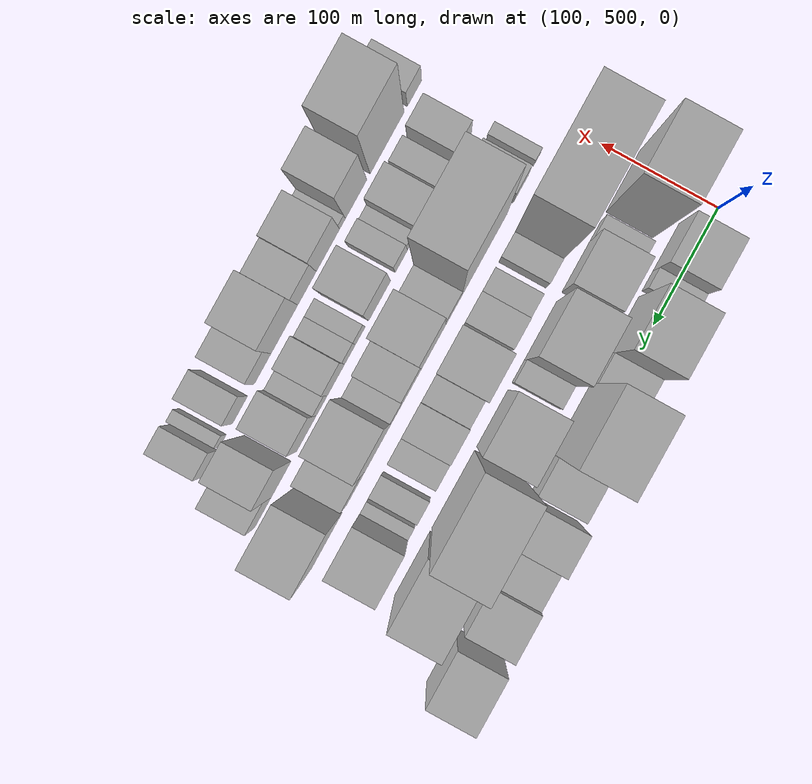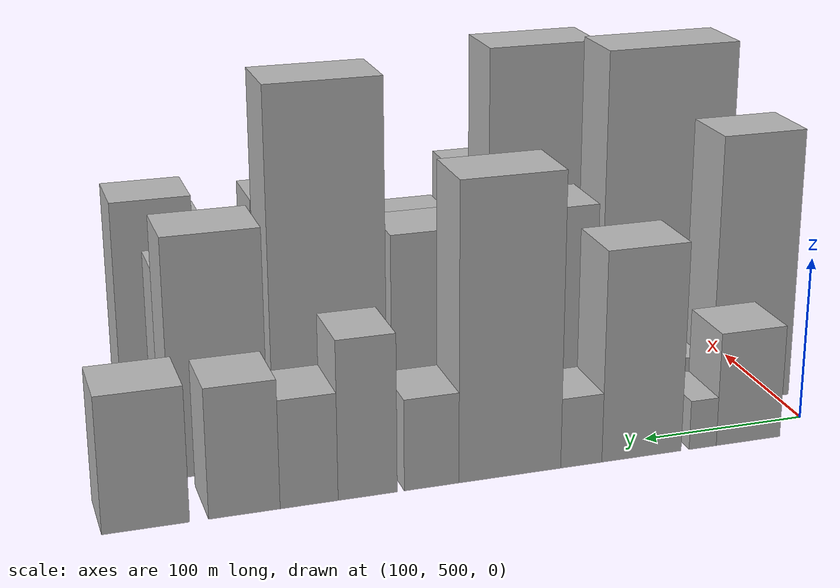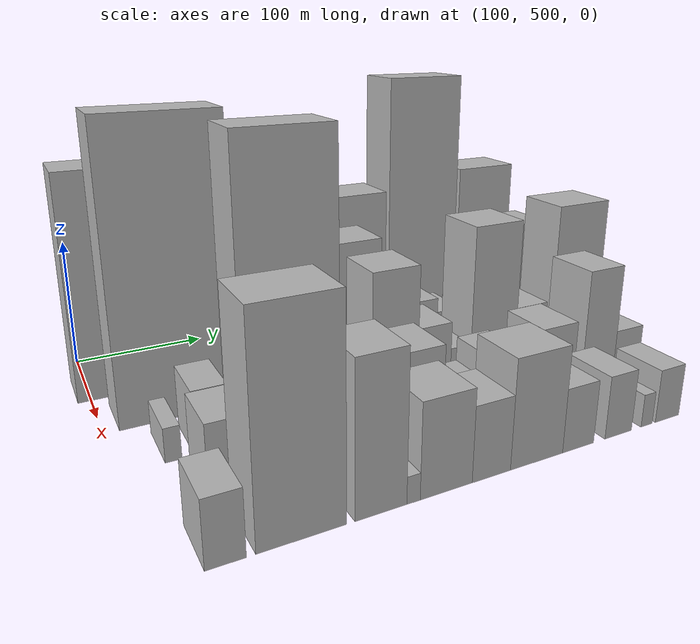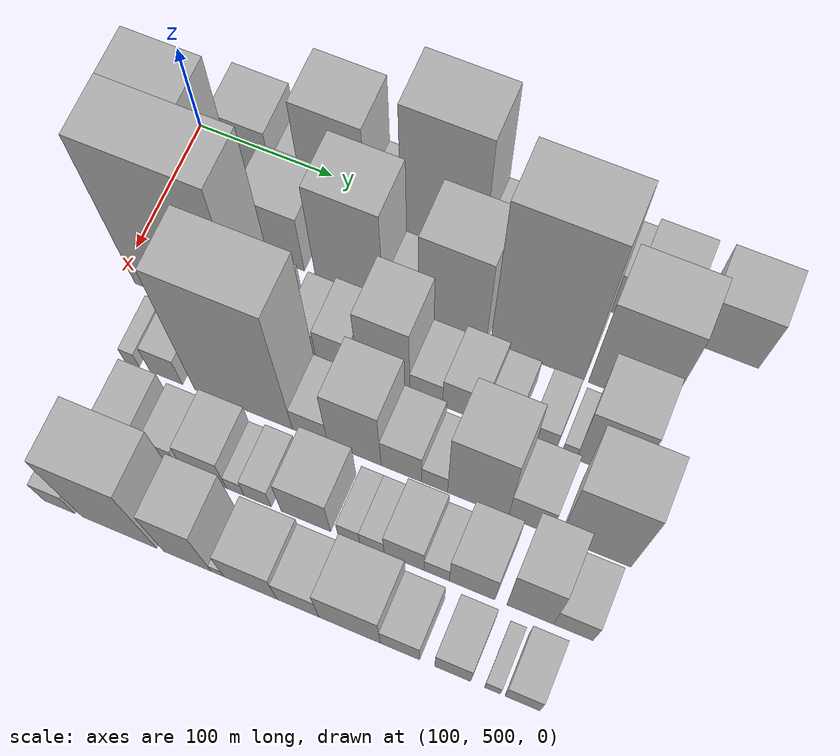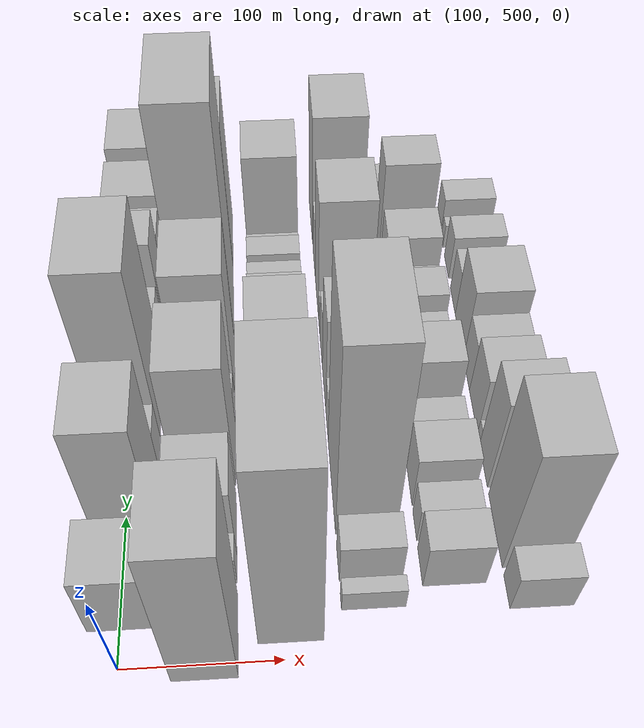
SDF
<sdf version="1.6">
 <world name="default">
  <model name="building_42">
   <static>1</static>
   <pose>100.0000 544.4914 0 0.000000 0.000000 0.000000</pose>
   <link name="link">
    <pose>0 0 34.50 0 0 0</pose>
    <collision name="collision"><geometry><box><size>40.0000 40.5359 69.0000</size></box></geometry></collision>
    <visual name="visual">
     <cast_shadows>0</cast_shadows>
     <geometry><box><size>40.0000 40.5359 69.0000</size></box></geometry>
     <material>
      <script>
       <uri>model://HANNAS_wall/materials/scripts</uri>
       <uri>model://HANNAS_wall/materials/textures</uri>
       <name>vrc/HANNAS_wall</name>
      </script>
     </material>
    </visual>
   </link>
  </model>
  <model name="building_43">
   <static>1</static>
   <pose>100.0000 573.2885 0 0.000000 0.000000 0.000000</pose>
   <link name="link">
    <pose>0 0 15.00 0 0 0</pose>
    <collision name="collision"><geometry><box><size>40.0000 17.0583 30.0000</size></box></geometry></collision>
    <visual name="visual">
     <cast_shadows>0</cast_shadows>
     <geometry><box><size>40.0000 17.0583 30.0000</size></box></geometry>
     <material>
      <script>
       <uri>model://HANNAS_wall/materials/scripts</uri>
       <uri>model://HANNAS_wall/materials/textures</uri>
       <name>vrc/HANNAS_wall</name>
      </script>
     </material>
    </visual>
   </link>
  </model>
  <model name="building_44">
   <static>1</static>
   <pose>100.0000 611.1924 0 0.000000 0.000000 0.000000</pose>
   <link name="link">
    <pose>0 0 63.00 0 0 0</pose>
    <collision name="collision"><geometry><box><size>40.0000 48.7495 126.0000</size></box></geometry></collision>
    <visual name="visual">
     <cast_shadows>0</cast_shadows>
     <geometry><box><size>40.0000 48.7495 126.0000</size></box></geometry>
     <material>
      <script>
       <uri>model://HANNAS_wall/materials/scripts</uri>
       <uri>model://HANNAS_wall/materials/textures</uri>
       <name>vrc/HANNAS_wall</name>
      </script>
     </material>
    </visual>
   </link>
  </model>
  <model name="building_45">
   <static>1</static>
   <pose>100.0000 647.9582 0 0.000000 0.000000 0.000000</pose>
   <link name="link">
    <pose>0 0 21.00 0 0 0</pose>
    <collision name="collision"><geometry><box><size>40.0000 24.7822 42.0000</size></box></geometry></collision>
    <visual name="visual">
     <cast_shadows>0</cast_shadows>
     <geometry><box><size>40.0000 24.7822 42.0000</size></box></geometry>
     <material>
      <script>
       <uri>model://HANNAS_wall/materials/scripts</uri>
       <uri>model://HANNAS_wall/materials/textures</uri>
       <name>vrc/HANNAS_wall</name>
      </script>
     </material>
    </visual>
   </link>
  </model>
  <model name="building_46">
   <static>1</static>
   <pose>100.0000 690.2803 0 0.000000 0.000000 0.000000</pose>
   <link name="link">
    <pose>0 0 87.00 0 0 0</pose>
    <collision name="collision"><geometry><box><size>40.0000 59.8620 174.0000</size></box></geometry></collision>
    <visual name="visual">
     <cast_shadows>0</cast_shadows>
     <geometry><box><size>40.0000 59.8620 174.0000</size></box></geometry>
     <material>
      <script>
       <uri>model://HANNAS_wall/materials/scripts</uri>
       <uri>model://HANNAS_wall/materials/textures</uri>
       <name>vrc/HANNAS_wall</name>
      </script>
     </material>
    </visual>
   </link>
  </model>
  <model name="building_47">
   <static>1</static>
   <pose>100.0000 735.8342 0 0.000000 0.000000 0.000000</pose>
   <link name="link">
    <pose>0 0 27.00 0 0 0</pose>
    <collision name="collision"><geometry><box><size>40.0000 31.2457 54.0000</size></box></geometry></collision>
    <visual name="visual">
     <cast_shadows>0</cast_shadows>
     <geometry><box><size>40.0000 31.2457 54.0000</size></box></geometry>
     <material>
      <script>
       <uri>model://HANNAS_wall/materials/scripts</uri>
       <uri>model://HANNAS_wall/materials/textures</uri>
       <name>vrc/HANNAS_wall</name>
      </script>
     </material>
    </visual>
   </link>
  </model>
  <model name="building_48">
   <static>1</static>
   <pose>100.0000 772.0168 0 0.000000 0.000000 0.000000</pose>
   <link name="link">
    <pose>0 0 46.50 0 0 0</pose>
    <collision name="collision"><geometry><box><size>40.0000 33.1195 93.0000</size></box></geometry></collision>
    <visual name="visual">
     <cast_shadows>0</cast_shadows>
     <geometry><box><size>40.0000 33.1195 93.0000</size></box></geometry>
     <material>
      <script>
       <uri>model://HANNAS_wall/materials/scripts</uri>
       <uri>model://HANNAS_wall/materials/textures</uri>
       <name>vrc/HANNAS_wall</name>
      </script>
     </material>
    </visual>
   </link>
  </model>
  <model name="building_49">
   <static>1</static>
   <pose>100.0000 804.5187 0 0.000000 0.000000 0.000000</pose>
   <link name="link">
    <pose>0 0 31.50 0 0 0</pose>
    <collision name="collision"><geometry><box><size>40.0000 31.8842 63.0000</size></box></geometry></collision>
    <visual name="visual">
     <cast_shadows>0</cast_shadows>
     <geometry><box><size>40.0000 31.8842 63.0000</size></box></geometry>
     <material>
      <script>
       <uri>model://HANNAS_wall/materials/scripts</uri>
       <uri>model://HANNAS_wall/materials/textures</uri>
       <name>vrc/HANNAS_wall</name>
      </script>
     </material>
    </visual>
   </link>
  </model>
  <model name="building_50">
   <static>1</static>
   <pose>100.0000 839.7334 0 0.000000 0.000000 0.000000</pose>
   <link name="link">
    <pose>0 0 37.50 0 0 0</pose>
    <collision name="collision"><geometry><box><size>40.0000 38.5453 75.0000</size></box></geometry></collision>
    <visual name="visual">
     <cast_shadows>0</cast_shadows>
     <geometry><box><size>40.0000 38.5453 75.0000</size></box></geometry>
     <material>
      <script>
       <uri>model://HANNAS_wall/materials/scripts</uri>
       <uri>model://HANNAS_wall/materials/textures</uri>
       <name>vrc/HANNAS_wall</name>
      </script>
     </material>
    </visual>
   </link>
  </model>
  <model name="building_51">
   <static>1</static>
   <pose>100.0000 892.0236 0 0.000000 0.000000 0.000000</pose>
   <link name="link">
    <pose>0 0 39.00 0 0 0</pose>
    <collision name="collision"><geometry><box><size>40.0000 46.0351 78.0000</size></box></geometry></collision>
    <visual name="visual">
     <cast_shadows>0</cast_shadows>
     <geometry><box><size>40.0000 46.0351 78.0000</size></box></geometry>
     <material>
      <script>
       <uri>model://HANNAS_wall/materials/scripts</uri>
       <uri>model://HANNAS_wall/materials/textures</uri>
       <name>vrc/HANNAS_wall</name>
      </script>
     </material>
    </visual>
   </link>
  </model>
  <model name="building_88">
   <static>1</static>
   <pose>152.0000 517.1321 0 0.000000 0.000000 0.000000</pose>
   <link name="link">
    <pose>0 0 84.00 0 0 0</pose>
    <collision name="collision"><geometry><box><size>40.0000 52.2592 168.0000</size></box></geometry></collision>
    <visual name="visual">
     <cast_shadows>0</cast_shadows>
     <geometry><box><size>40.0000 52.2592 168.0000</size></box></geometry>
     <material>
      <script>
       <uri>model://HANNAS_wall/materials/scripts</uri>
       <uri>model://HANNAS_wall/materials/textures</uri>
       <name>vrc/HANNAS_wall</name>
      </script>
     </material>
    </visual>
   </link>
  </model>
  <model name="building_89">
   <static>1</static>
   <pose>152.0000 559.5845 0 0.000000 0.000000 0.000000</pose>
   <link name="link">
    <pose>0 0 16.50 0 0 0</pose>
    <collision name="collision"><geometry><box><size>40.0000 18.6455 33.0000</size></box></geometry></collision>
    <visual name="visual">
     <cast_shadows>0</cast_shadows>
     <geometry><box><size>40.0000 18.6455 33.0000</size></box></geometry>
     <material>
      <script>
       <uri>model://HANNAS_wall/materials/scripts</uri>
       <uri>model://HANNAS_wall/materials/textures</uri>
       <name>vrc/HANNAS_wall</name>
      </script>
     </material>
    </visual>
   </link>
  </model>
  <model name="building_90">
   <static>1</static>
   <pose>152.0000 590.2712 0 0.000000 0.000000 0.000000</pose>
   <link name="link">
    <pose>0 0 40.50 0 0 0</pose>
    <collision name="collision"><geometry><box><size>40.0000 42.7281 81.0000</size></box></geometry></collision>
    <visual name="visual">
     <cast_shadows>0</cast_shadows>
     <geometry><box><size>40.0000 42.7281 81.0000</size></box></geometry>
     <material>
      <script>
       <uri>model://HANNAS_wall/materials/scripts</uri>
       <uri>model://HANNAS_wall/materials/textures</uri>
       <name>vrc/HANNAS_wall</name>
      </script>
     </material>
    </visual>
   </link>
  </model>
  <model name="building_91">
   <static>1</static>
   <pose>152.0000 644.6111 0 0.000000 0.000000 0.000000</pose>
   <link name="link">
    <pose>0 0 67.50 0 0 0</pose>
    <collision name="collision"><geometry><box><size>40.0000 49.9517 135.0000</size></box></geometry></collision>
    <visual name="visual">
     <cast_shadows>0</cast_shadows>
     <geometry><box><size>40.0000 49.9517 135.0000</size></box></geometry>
     <material>
      <script>
       <uri>model://HANNAS_wall/materials/scripts</uri>
       <uri>model://HANNAS_wall/materials/textures</uri>
       <name>vrc/HANNAS_wall</name>
      </script>
     </material>
    </visual>
   </link>
  </model>
  <model name="building_92">
   <static>1</static>
   <pose>152.0000 679.1760 0 0.000000 0.000000 0.000000</pose>
   <link name="link">
    <pose>0 0 16.50 0 0 0</pose>
    <collision name="collision"><geometry><box><size>40.0000 19.1781 33.0000</size></box></geometry></collision>
    <visual name="visual">
     <cast_shadows>0</cast_shadows>
     <geometry><box><size>40.0000 19.1781 33.0000</size></box></geometry>
     <material>
      <script>
       <uri>model://HANNAS_wall/materials/scripts</uri>
       <uri>model://HANNAS_wall/materials/textures</uri>
       <name>vrc/HANNAS_wall</name>
      </script>
     </material>
    </visual>
   </link>
  </model>
  <model name="building_93">
   <static>1</static>
   <pose>152.0000 718.9890 0 0.000000 0.000000 0.000000</pose>
   <link name="link">
    <pose>0 0 64.50 0 0 0</pose>
    <collision name="collision"><geometry><box><size>40.0000 48.4477 129.0000</size></box></geometry></collision>
    <visual name="visual">
     <cast_shadows>0</cast_shadows>
     <geometry><box><size>40.0000 48.4477 129.0000</size></box></geometry>
     <material>
      <script>
       <uri>model://HANNAS_wall/materials/scripts</uri>
       <uri>model://HANNAS_wall/materials/textures</uri>
       <name>vrc/HANNAS_wall</name>
      </script>
     </material>
    </visual>
   </link>
  </model>
  <model name="building_94">
   <static>1</static>
   <pose>152.0000 779.1926 0 0.000000 0.000000 0.000000</pose>
   <link name="link">
    <pose>0 0 109.50 0 0 0</pose>
    <collision name="collision"><geometry><box><size>40.0000 65.9595 219.0000</size></box></geometry></collision>
    <visual name="visual">
     <cast_shadows>0</cast_shadows>
     <geometry><box><size>40.0000 65.9595 219.0000</size></box></geometry>
     <material>
      <script>
       <uri>model://HANNAS_wall/materials/scripts</uri>
       <uri>model://HANNAS_wall/materials/textures</uri>
       <name>vrc/HANNAS_wall</name>
      </script>
     </material>
    </visual>
   </link>
  </model>
  <model name="building_95">
   <static>1</static>
   <pose>152.0000 842.4534 0 0.000000 0.000000 0.000000</pose>
   <link name="link">
    <pose>0 0 70.50 0 0 0</pose>
    <collision name="collision"><geometry><box><size>40.0000 54.5622 141.0000</size></box></geometry></collision>
    <visual name="visual">
     <cast_shadows>0</cast_shadows>
     <geometry><box><size>40.0000 54.5622 141.0000</size></box></geometry>
     <material>
      <script>
       <uri>model://HANNAS_wall/materials/scripts</uri>
       <uri>model://HANNAS_wall/materials/textures</uri>
       <name>vrc/HANNAS_wall</name>
      </script>
     </material>
    </visual>
   </link>
  </model>
  <model name="building_139">
   <static>1</static>
   <pose>204.0000 552.3379 0 0.000000 0.000000 0.000000</pose>
   <link name="link">
    <pose>0 0 105.00 0 0 0</pose>
    <collision name="collision"><geometry><box><size>40.0000 83.4560 210.0000</size></box></geometry></collision>
    <visual name="visual">
     <cast_shadows>0</cast_shadows>
     <geometry><box><size>40.0000 83.4560 210.0000</size></box></geometry>
     <material>
      <script>
       <uri>model://HANNAS_wall/materials/scripts</uri>
       <uri>model://HANNAS_wall/materials/textures</uri>
       <name>vrc/HANNAS_wall</name>
      </script>
     </material>
    </visual>
   </link>
  </model>
  <model name="building_140">
   <static>1</static>
   <pose>204.0000 604.3417 0 0.000000 0.000000 0.000000</pose>
   <link name="link">
    <pose>0 0 19.50 0 0 0</pose>
    <collision name="collision"><geometry><box><size>40.0000 20.5516 39.0000</size></box></geometry></collision>
    <visual name="visual">
     <cast_shadows>0</cast_shadows>
     <geometry><box><size>40.0000 20.5516 39.0000</size></box></geometry>
     <material>
      <script>
       <uri>model://HANNAS_wall/materials/scripts</uri>
       <uri>model://HANNAS_wall/materials/textures</uri>
       <name>vrc/HANNAS_wall</name>
      </script>
     </material>
    </visual>
   </link>
  </model>
  <model name="building_141">
   <static>1</static>
   <pose>204.0000 632.7644 0 0.000000 0.000000 0.000000</pose>
   <link name="link">
    <pose>0 0 18.00 0 0 0</pose>
    <collision name="collision"><geometry><box><size>40.0000 20.2938 36.0000</size></box></geometry></collision>
    <visual name="visual">
     <cast_shadows>0</cast_shadows>
     <geometry><box><size>40.0000 20.2938 36.0000</size></box></geometry>
     <material>
      <script>
       <uri>model://HANNAS_wall/materials/scripts</uri>
       <uri>model://HANNAS_wall/materials/textures</uri>
       <name>vrc/HANNAS_wall</name>
      </script>
     </material>
    </visual>
   </link>
  </model>
  <model name="building_142">
   <static>1</static>
   <pose>204.0000 655.7112 0 0.000000 0.000000 0.000000</pose>
   <link name="link">
    <pose>0 0 22.50 0 0 0</pose>
    <collision name="collision"><geometry><box><size>40.0000 25.5998 45.0000</size></box></geometry></collision>
    <visual name="visual">
     <cast_shadows>0</cast_shadows>
     <geometry><box><size>40.0000 25.5998 45.0000</size></box></geometry>
     <material>
      <script>
       <uri>model://HANNAS_wall/materials/scripts</uri>
       <uri>model://HANNAS_wall/materials/textures</uri>
       <name>vrc/HANNAS_wall</name>
      </script>
     </material>
    </visual>
   </link>
  </model>
  <model name="building_143">
   <static>1</static>
   <pose>204.0000 691.9859 0 0.000000 0.000000 0.000000</pose>
   <link name="link">
    <pose>0 0 54.00 0 0 0</pose>
    <collision name="collision"><geometry><box><size>40.0000 36.9496 108.0000</size></box></geometry></collision>
    <visual name="visual">
     <cast_shadows>0</cast_shadows>
     <geometry><box><size>40.0000 36.9496 108.0000</size></box></geometry>
     <material>
      <script>
       <uri>model://HANNAS_wall/materials/scripts</uri>
       <uri>model://HANNAS_wall/materials/textures</uri>
       <name>vrc/HANNAS_wall</name>
      </script>
     </material>
    </visual>
   </link>
  </model>
  <model name="building_144">
   <static>1</static>
   <pose>204.0000 721.9324 0 0.000000 0.000000 0.000000</pose>
   <link name="link">
    <pose>0 0 19.50 0 0 0</pose>
    <collision name="collision"><geometry><box><size>40.0000 22.9434 39.0000</size></box></geometry></collision>
    <visual name="visual">
     <cast_shadows>0</cast_shadows>
     <geometry><box><size>40.0000 22.9434 39.0000</size></box></geometry>
     <material>
      <script>
       <uri>model://HANNAS_wall/materials/scripts</uri>
       <uri>model://HANNAS_wall/materials/textures</uri>
       <name>vrc/HANNAS_wall</name>
      </script>
     </material>
    </visual>
   </link>
  </model>
  <model name="building_145">
   <static>1</static>
   <pose>204.0000 747.8635 0 0.000000 0.000000 0.000000</pose>
   <link name="link">
    <pose>0 0 25.50 0 0 0</pose>
    <collision name="collision"><geometry><box><size>40.0000 28.9188 51.0000</size></box></geometry></collision>
    <visual name="visual">
     <cast_shadows>0</cast_shadows>
     <geometry><box><size>40.0000 28.9188 51.0000</size></box></geometry>
     <material>
      <script>
       <uri>model://HANNAS_wall/materials/scripts</uri>
       <uri>model://HANNAS_wall/materials/textures</uri>
       <name>vrc/HANNAS_wall</name>
      </script>
     </material>
    </visual>
   </link>
  </model>
  <model name="building_146">
   <static>1</static>
   <pose>204.0000 773.2035 0 0.000000 0.000000 0.000000</pose>
   <link name="link">
    <pose>0 0 19.50 0 0 0</pose>
    <collision name="collision"><geometry><box><size>40.0000 21.7611 39.0000</size></box></geometry></collision>
    <visual name="visual">
     <cast_shadows>0</cast_shadows>
     <geometry><box><size>40.0000 21.7611 39.0000</size></box></geometry>
     <material>
      <script>
       <uri>model://HANNAS_wall/materials/scripts</uri>
       <uri>model://HANNAS_wall/materials/textures</uri>
       <name>vrc/HANNAS_wall</name>
      </script>
     </material>
    </visual>
   </link>
  </model>
  <model name="building_147">
   <static>1</static>
   <pose>204.0000 802.6611 0 0.000000 0.000000 0.000000</pose>
   <link name="link">
    <pose>0 0 18.00 0 0 0</pose>
    <collision name="collision"><geometry><box><size>40.0000 19.1540 36.0000</size></box></geometry></collision>
    <visual name="visual">
     <cast_shadows>0</cast_shadows>
     <geometry><box><size>40.0000 19.1540 36.0000</size></box></geometry>
     <material>
      <script>
       <uri>model://HANNAS_wall/materials/scripts</uri>
       <uri>model://HANNAS_wall/materials/textures</uri>
       <name>vrc/HANNAS_wall</name>
      </script>
     </material>
    </visual>
   </link>
  </model>
  <model name="building_148">
   <static>1</static>
   <pose>204.0000 821.2860 0 0.000000 0.000000 0.000000</pose>
   <link name="link">
    <pose>0 0 12.00 0 0 0</pose>
    <collision name="collision"><geometry><box><size>40.0000 10.0958 24.0000</size></box></geometry></collision>
    <visual name="visual">
     <cast_shadows>0</cast_shadows>
     <geometry><box><size>40.0000 10.0958 24.0000</size></box></geometry>
     <material>
      <script>
       <uri>model://HANNAS_wall/materials/scripts</uri>
       <uri>model://HANNAS_wall/materials/textures</uri>
       <name>vrc/HANNAS_wall</name>
      </script>
     </material>
    </visual>
   </link>
  </model>
  <model name="building_149">
   <static>1</static>
   <pose>204.0000 846.6514 0 0.000000 0.000000 0.000000</pose>
   <link name="link">
    <pose>0 0 51.00 0 0 0</pose>
    <collision name="collision"><geometry><box><size>40.0000 40.6350 102.0000</size></box></geometry></collision>
    <visual name="visual">
     <cast_shadows>0</cast_shadows>
     <geometry><box><size>40.0000 40.6350 102.0000</size></box></geometry>
     <material>
      <script>
       <uri>model://HANNAS_wall/materials/scripts</uri>
       <uri>model://HANNAS_wall/materials/textures</uri>
       <name>vrc/HANNAS_wall</name>
      </script>
     </material>
    </visual>
   </link>
  </model>
  <model name="building_193">
   <static>1</static>
   <pose>256.0000 534.2017 0 0.000000 0.000000 0.000000</pose>
   <link name="link">
    <pose>0 0 12.00 0 0 0</pose>
    <collision name="collision"><geometry><box><size>40.0000 10.6460 24.0000</size></box></geometry></collision>
    <visual name="visual">
     <cast_shadows>0</cast_shadows>
     <geometry><box><size>40.0000 10.6460 24.0000</size></box></geometry>
     <material>
      <script>
       <uri>model://HANNAS_wall/materials/scripts</uri>
       <uri>model://HANNAS_wall/materials/textures</uri>
       <name>vrc/HANNAS_wall</name>
      </script>
     </material>
    </visual>
   </link>
  </model>
  <model name="building_194">
   <static>1</static>
   <pose>256.0000 559.3073 0 0.000000 0.000000 0.000000</pose>
   <link name="link">
    <pose>0 0 22.50 0 0 0</pose>
    <collision name="collision"><geometry><box><size>40.0000 23.5653 45.0000</size></box></geometry></collision>
    <visual name="visual">
     <cast_shadows>0</cast_shadows>
     <geometry><box><size>40.0000 23.5653 45.0000</size></box></geometry>
     <material>
      <script>
       <uri>model://HANNAS_wall/materials/scripts</uri>
       <uri>model://HANNAS_wall/materials/textures</uri>
       <name>vrc/HANNAS_wall</name>
      </script>
     </material>
    </visual>
   </link>
  </model>
  <model name="building_195">
   <static>1</static>
   <pose>256.0000 615.0614 0 0.000000 0.000000 0.000000</pose>
   <link name="link">
    <pose>0 0 102.00 0 0 0</pose>
    <collision name="collision"><geometry><box><size>40.0000 69.9428 204.0000</size></box></geometry></collision>
    <visual name="visual">
     <cast_shadows>0</cast_shadows>
     <geometry><box><size>40.0000 69.9428 204.0000</size></box></geometry>
     <material>
      <script>
       <uri>model://HANNAS_wall/materials/scripts</uri>
       <uri>model://HANNAS_wall/materials/textures</uri>
       <name>vrc/HANNAS_wall</name>
      </script>
     </material>
    </visual>
   </link>
  </model>
  <model name="building_196">
   <static>1</static>
   <pose>256.0000 662.4705 0 0.000000 0.000000 0.000000</pose>
   <link name="link">
    <pose>0 0 21.00 0 0 0</pose>
    <collision name="collision"><geometry><box><size>40.0000 24.8755 42.0000</size></box></geometry></collision>
    <visual name="visual">
     <cast_shadows>0</cast_shadows>
     <geometry><box><size>40.0000 24.8755 42.0000</size></box></geometry>
     <material>
      <script>
       <uri>model://HANNAS_wall/materials/scripts</uri>
       <uri>model://HANNAS_wall/materials/textures</uri>
       <name>vrc/HANNAS_wall</name>
      </script>
     </material>
    </visual>
   </link>
  </model>
  <model name="building_197">
   <static>1</static>
   <pose>256.0000 693.6540 0 0.000000 0.000000 0.000000</pose>
   <link name="link">
    <pose>0 0 51.00 0 0 0</pose>
    <collision name="collision"><geometry><box><size>40.0000 37.4915 102.0000</size></box></geometry></collision>
    <visual name="visual">
     <cast_shadows>0</cast_shadows>
     <geometry><box><size>40.0000 37.4915 102.0000</size></box></geometry>
     <material>
      <script>
       <uri>model://HANNAS_wall/materials/scripts</uri>
       <uri>model://HANNAS_wall/materials/textures</uri>
       <name>vrc/HANNAS_wall</name>
      </script>
     </material>
    </visual>
   </link>
  </model>
  <model name="building_198">
   <static>1</static>
   <pose>256.0000 726.4750 0 0.000000 0.000000 0.000000</pose>
   <link name="link">
    <pose>0 0 27.00 0 0 0</pose>
    <collision name="collision"><geometry><box><size>40.0000 28.1504 54.0000</size></box></geometry></collision>
    <visual name="visual">
     <cast_shadows>0</cast_shadows>
     <geometry><box><size>40.0000 28.1504 54.0000</size></box></geometry>
     <material>
      <script>
       <uri>model://HANNAS_wall/materials/scripts</uri>
       <uri>model://HANNAS_wall/materials/textures</uri>
       <name>vrc/HANNAS_wall</name>
      </script>
     </material>
    </visual>
   </link>
  </model>
  <model name="building_199">
   <static>1</static>
   <pose>256.0000 749.4192 0 0.000000 0.000000 0.000000</pose>
   <link name="link">
    <pose>0 0 16.50 0 0 0</pose>
    <collision name="collision"><geometry><box><size>40.0000 17.7379 33.0000</size></box></geometry></collision>
    <visual name="visual">
     <cast_shadows>0</cast_shadows>
     <geometry><box><size>40.0000 17.7379 33.0000</size></box></geometry>
     <material>
      <script>
       <uri>model://HANNAS_wall/materials/scripts</uri>
       <uri>model://HANNAS_wall/materials/textures</uri>
       <name>vrc/HANNAS_wall</name>
      </script>
     </material>
    </visual>
   </link>
  </model>
  <model name="building_200">
   <static>1</static>
   <pose>256.0000 779.1342 0 0.000000 0.000000 0.000000</pose>
   <link name="link">
    <pose>0 0 61.50 0 0 0</pose>
    <collision name="collision"><geometry><box><size>40.0000 41.6921 123.0000</size></box></geometry></collision>
    <visual name="visual">
     <cast_shadows>0</cast_shadows>
     <geometry><box><size>40.0000 41.6921 123.0000</size></box></geometry>
     <material>
      <script>
       <uri>model://HANNAS_wall/materials/scripts</uri>
       <uri>model://HANNAS_wall/materials/textures</uri>
       <name>vrc/HANNAS_wall</name>
      </script>
     </material>
    </visual>
   </link>
  </model>
  <model name="building_201">
   <static>1</static>
   <pose>256.0000 814.4485 0 0.000000 0.000000 0.000000</pose>
   <link name="link">
    <pose>0 0 27.00 0 0 0</pose>
    <collision name="collision"><geometry><box><size>40.0000 28.9365 54.0000</size></box></geometry></collision>
    <visual name="visual">
     <cast_shadows>0</cast_shadows>
     <geometry><box><size>40.0000 28.9365 54.0000</size></box></geometry>
     <material>
      <script>
       <uri>model://HANNAS_wall/materials/scripts</uri>
       <uri>model://HANNAS_wall/materials/textures</uri>
       <name>vrc/HANNAS_wall</name>
      </script>
     </material>
    </visual>
   </link>
  </model>
  <model name="building_202">
   <static>1</static>
   <pose>256.0000 858.8118 0 0.000000 0.000000 0.000000</pose>
   <link name="link">
    <pose>0 0 64.50 0 0 0</pose>
    <collision name="collision"><geometry><box><size>40.0000 47.7900 129.0000</size></box></geometry></collision>
    <visual name="visual">
     <cast_shadows>0</cast_shadows>
     <geometry><box><size>40.0000 47.7900 129.0000</size></box></geometry>
     <material>
      <script>
       <uri>model://HANNAS_wall/materials/scripts</uri>
       <uri>model://HANNAS_wall/materials/textures</uri>
       <name>vrc/HANNAS_wall</name>
      </script>
     </material>
    </visual>
   </link>
  </model>
  <model name="building_248">
   <static>1</static>
   <pose>308.0000 554.4447 0 0.000000 0.000000 0.000000</pose>
   <link name="link">
    <pose>0 0 25.50 0 0 0</pose>
    <collision name="collision"><geometry><box><size>40.0000 26.0368 51.0000</size></box></geometry></collision>
    <visual name="visual">
     <cast_shadows>0</cast_shadows>
     <geometry><box><size>40.0000 26.0368 51.0000</size></box></geometry>
     <material>
      <script>
       <uri>model://HANNAS_wall/materials/scripts</uri>
       <uri>model://HANNAS_wall/materials/textures</uri>
       <name>vrc/HANNAS_wall</name>
      </script>
     </material>
    </visual>
   </link>
  </model>
  <model name="building_249">
   <static>1</static>
   <pose>308.0000 583.0233 0 0.000000 0.000000 0.000000</pose>
   <link name="link">
    <pose>0 0 19.50 0 0 0</pose>
    <collision name="collision"><geometry><box><size>40.0000 21.1204 39.0000</size></box></geometry></collision>
    <visual name="visual">
     <cast_shadows>0</cast_shadows>
     <geometry><box><size>40.0000 21.1204 39.0000</size></box></geometry>
     <material>
      <script>
       <uri>model://HANNAS_wall/materials/scripts</uri>
       <uri>model://HANNAS_wall/materials/textures</uri>
       <name>vrc/HANNAS_wall</name>
      </script>
     </material>
    </visual>
   </link>
  </model>
  <model name="building_250">
   <static>1</static>
   <pose>308.0000 612.5281 0 0.000000 0.000000 0.000000</pose>
   <link name="link">
    <pose>0 0 28.50 0 0 0</pose>
    <collision name="collision"><geometry><box><size>40.0000 29.8892 57.0000</size></box></geometry></collision>
    <visual name="visual">
     <cast_shadows>0</cast_shadows>
     <geometry><box><size>40.0000 29.8892 57.0000</size></box></geometry>
     <material>
      <script>
       <uri>model://HANNAS_wall/materials/scripts</uri>
       <uri>model://HANNAS_wall/materials/textures</uri>
       <name>vrc/HANNAS_wall</name>
      </script>
     </material>
    </visual>
   </link>
  </model>
  <model name="building_251">
   <static>1</static>
   <pose>308.0000 633.6556 0 0.000000 0.000000 0.000000</pose>
   <link name="link">
    <pose>0 0 13.50 0 0 0</pose>
    <collision name="collision"><geometry><box><size>40.0000 12.3658 27.0000</size></box></geometry></collision>
    <visual name="visual">
     <cast_shadows>0</cast_shadows>
     <geometry><box><size>40.0000 12.3658 27.0000</size></box></geometry>
     <material>
      <script>
       <uri>model://HANNAS_wall/materials/scripts</uri>
       <uri>model://HANNAS_wall/materials/textures</uri>
       <name>vrc/HANNAS_wall</name>
      </script>
     </material>
    </visual>
   </link>
  </model>
  <model name="building_252">
   <static>1</static>
   <pose>308.0000 649.2954 0 0.000000 0.000000 0.000000</pose>
   <link name="link">
    <pose>0 0 18.00 0 0 0</pose>
    <collision name="collision"><geometry><box><size>40.0000 18.9139 36.0000</size></box></geometry></collision>
    <visual name="visual">
     <cast_shadows>0</cast_shadows>
     <geometry><box><size>40.0000 18.9139 36.0000</size></box></geometry>
     <material>
      <script>
       <uri>model://HANNAS_wall/materials/scripts</uri>
       <uri>model://HANNAS_wall/materials/textures</uri>
       <name>vrc/HANNAS_wall</name>
      </script>
     </material>
    </visual>
   </link>
  </model>
  <model name="building_253">
   <static>1</static>
   <pose>308.0000 682.8637 0 0.000000 0.000000 0.000000</pose>
   <link name="link">
    <pose>0 0 33.00 0 0 0</pose>
    <collision name="collision"><geometry><box><size>40.0000 34.2227 66.0000</size></box></geometry></collision>
    <visual name="visual">
     <cast_shadows>0</cast_shadows>
     <geometry><box><size>40.0000 34.2227 66.0000</size></box></geometry>
     <material>
      <script>
       <uri>model://HANNAS_wall/materials/scripts</uri>
       <uri>model://HANNAS_wall/materials/textures</uri>
       <name>vrc/HANNAS_wall</name>
      </script>
     </material>
    </visual>
   </link>
  </model>
  <model name="building_254">
   <static>1</static>
   <pose>308.0000 712.5479 0 0.000000 0.000000 0.000000</pose>
   <link name="link">
    <pose>0 0 15.00 0 0 0</pose>
    <collision name="collision"><geometry><box><size>40.0000 15.1456 30.0000</size></box></geometry></collision>
    <visual name="visual">
     <cast_shadows>0</cast_shadows>
     <geometry><box><size>40.0000 15.1456 30.0000</size></box></geometry>
     <material>
      <script>
       <uri>model://HANNAS_wall/materials/scripts</uri>
       <uri>model://HANNAS_wall/materials/textures</uri>
       <name>vrc/HANNAS_wall</name>
      </script>
     </material>
    </visual>
   </link>
  </model>
  <model name="building_255">
   <static>1</static>
   <pose>308.0000 728.4357 0 0.000000 0.000000 0.000000</pose>
   <link name="link">
    <pose>0 0 15.00 0 0 0</pose>
    <collision name="collision"><geometry><box><size>40.0000 16.6300 30.0000</size></box></geometry></collision>
    <visual name="visual">
     <cast_shadows>0</cast_shadows>
     <geometry><box><size>40.0000 16.6300 30.0000</size></box></geometry>
     <material>
      <script>
       <uri>model://HANNAS_wall/materials/scripts</uri>
       <uri>model://HANNAS_wall/materials/textures</uri>
       <name>vrc/HANNAS_wall</name>
      </script>
     </material>
    </visual>
   </link>
  </model>
  <model name="building_256">
   <static>1</static>
   <pose>308.0000 750.2407 0 0.000000 0.000000 0.000000</pose>
   <link name="link">
    <pose>0 0 24.00 0 0 0</pose>
    <collision name="collision"><geometry><box><size>40.0000 26.9798 48.0000</size></box></geometry></collision>
    <visual name="visual">
     <cast_shadows>0</cast_shadows>
     <geometry><box><size>40.0000 26.9798 48.0000</size></box></geometry>
     <material>
      <script>
       <uri>model://HANNAS_wall/materials/scripts</uri>
       <uri>model://HANNAS_wall/materials/textures</uri>
       <name>vrc/HANNAS_wall</name>
      </script>
     </material>
    </visual>
   </link>
  </model>
  <model name="building_257">
   <static>1</static>
   <pose>308.0000 772.2778 0 0.000000 0.000000 0.000000</pose>
   <link name="link">
    <pose>0 0 15.00 0 0 0</pose>
    <collision name="collision"><geometry><box><size>40.0000 17.0945 30.0000</size></box></geometry></collision>
    <visual name="visual">
     <cast_shadows>0</cast_shadows>
     <geometry><box><size>40.0000 17.0945 30.0000</size></box></geometry>
     <material>
      <script>
       <uri>model://HANNAS_wall/materials/scripts</uri>
       <uri>model://HANNAS_wall/materials/textures</uri>
       <name>vrc/HANNAS_wall</name>
      </script>
     </material>
    </visual>
   </link>
  </model>
  <model name="building_258">
   <static>1</static>
   <pose>308.0000 796.2029 0 0.000000 0.000000 0.000000</pose>
   <link name="link">
    <pose>0 0 30.00 0 0 0</pose>
    <collision name="collision"><geometry><box><size>40.0000 30.7556 60.0000</size></box></geometry></collision>
    <visual name="visual">
     <cast_shadows>0</cast_shadows>
     <geometry><box><size>40.0000 30.7556 60.0000</size></box></geometry>
     <material>
      <script>
       <uri>model://HANNAS_wall/materials/scripts</uri>
       <uri>model://HANNAS_wall/materials/textures</uri>
       <name>vrc/HANNAS_wall</name>
      </script>
     </material>
    </visual>
   </link>
  </model>
  <model name="building_259">
   <static>1</static>
   <pose>308.0000 835.1054 0 0.000000 0.000000 0.000000</pose>
   <link name="link">
    <pose>0 0 48.00 0 0 0</pose>
    <collision name="collision"><geometry><box><size>40.0000 31.0494 96.0000</size></box></geometry></collision>
    <visual name="visual">
     <cast_shadows>0</cast_shadows>
     <geometry><box><size>40.0000 31.0494 96.0000</size></box></geometry>
     <material>
      <script>
       <uri>model://HANNAS_wall/materials/scripts</uri>
       <uri>model://HANNAS_wall/materials/textures</uri>
       <name>vrc/HANNAS_wall</name>
      </script>
     </material>
    </visual>
   </link>
  </model>
  <model name="building_260">
   <static>1</static>
   <pose>308.0000 863.7012 0 0.000000 0.000000 0.000000</pose>
   <link name="link">
    <pose>0 0 22.50 0 0 0</pose>
    <collision name="collision"><geometry><box><size>40.0000 26.1422 45.0000</size></box></geometry></collision>
    <visual name="visual">
     <cast_shadows>0</cast_shadows>
     <geometry><box><size>40.0000 26.1422 45.0000</size></box></geometry>
     <material>
      <script>
       <uri>model://HANNAS_wall/materials/scripts</uri>
       <uri>model://HANNAS_wall/materials/textures</uri>
       <name>vrc/HANNAS_wall</name>
      </script>
     </material>
    </visual>
   </link>
  </model>
  <model name="building_303">
   <static>1</static>
   <pose>360.0000 534.7154 0 0.000000 0.000000 0.000000</pose>
   <link name="link">
    <pose>0 0 21.00 0 0 0</pose>
    <collision name="collision"><geometry><box><size>40.0000 22.1036 42.0000</size></box></geometry></collision>
    <visual name="visual">
     <cast_shadows>0</cast_shadows>
     <geometry><box><size>40.0000 22.1036 42.0000</size></box></geometry>
     <material>
      <script>
       <uri>model://HANNAS_wall/materials/scripts</uri>
       <uri>model://HANNAS_wall/materials/textures</uri>
       <name>vrc/HANNAS_wall</name>
      </script>
     </material>
    </visual>
   </link>
  </model>
  <model name="building_304">
   <static>1</static>
   <pose>360.0000 577.0079 0 0.000000 0.000000 0.000000</pose>
   <link name="link">
    <pose>0 0 69.00 0 0 0</pose>
    <collision name="collision"><geometry><box><size>40.0000 52.4814 138.0000</size></box></geometry></collision>
    <visual name="visual">
     <cast_shadows>0</cast_shadows>
     <geometry><box><size>40.0000 52.4814 138.0000</size></box></geometry>
     <material>
      <script>
       <uri>model://HANNAS_wall/materials/scripts</uri>
       <uri>model://HANNAS_wall/materials/textures</uri>
       <name>vrc/HANNAS_wall</name>
      </script>
     </material>
    </visual>
   </link>
  </model>
  <model name="building_305">
   <static>1</static>
   <pose>360.0000 624.7941 0 0.000000 0.000000 0.000000</pose>
   <link name="link">
    <pose>0 0 49.50 0 0 0</pose>
    <collision name="collision"><geometry><box><size>40.0000 33.0909 99.0000</size></box></geometry></collision>
    <visual name="visual">
     <cast_shadows>0</cast_shadows>
     <geometry><box><size>40.0000 33.0909 99.0000</size></box></geometry>
     <material>
      <script>
       <uri>model://HANNAS_wall/materials/scripts</uri>
       <uri>model://HANNAS_wall/materials/textures</uri>
       <name>vrc/HANNAS_wall</name>
      </script>
     </material>
    </visual>
   </link>
  </model>
  <model name="building_306">
   <static>1</static>
   <pose>360.0000 645.7884 0 0.000000 0.000000 0.000000</pose>
   <link name="link">
    <pose>0 0 9.00 0 0 0</pose>
    <collision name="collision"><geometry><box><size>40.0000 8.8979 18.0000</size></box></geometry></collision>
    <visual name="visual">
     <cast_shadows>0</cast_shadows>
     <geometry><box><size>40.0000 8.8979 18.0000</size></box></geometry>
     <material>
      <script>
       <uri>model://HANNAS_wall/materials/scripts</uri>
       <uri>model://HANNAS_wall/materials/textures</uri>
       <name>vrc/HANNAS_wall</name>
      </script>
     </material>
    </visual>
   </link>
  </model>
  <model name="building_307">
   <static>1</static>
   <pose>360.0000 668.3750 0 0.000000 0.000000 0.000000</pose>
   <link name="link">
    <pose>0 0 31.50 0 0 0</pose>
    <collision name="collision"><geometry><box><size>40.0000 36.2752 63.0000</size></box></geometry></collision>
    <visual name="visual">
     <cast_shadows>0</cast_shadows>
     <geometry><box><size>40.0000 36.2752 63.0000</size></box></geometry>
     <material>
      <script>
       <uri>model://HANNAS_wall/materials/scripts</uri>
       <uri>model://HANNAS_wall/materials/textures</uri>
       <name>vrc/HANNAS_wall</name>
      </script>
     </material>
    </visual>
   </link>
  </model>
  <model name="building_308">
   <static>1</static>
   <pose>360.0000 700.7523 0 0.000000 0.000000 0.000000</pose>
   <link name="link">
    <pose>0 0 25.50 0 0 0</pose>
    <collision name="collision"><geometry><box><size>40.0000 28.4794 51.0000</size></box></geometry></collision>
    <visual name="visual">
     <cast_shadows>0</cast_shadows>
     <geometry><box><size>40.0000 28.4794 51.0000</size></box></geometry>
     <material>
      <script>
       <uri>model://HANNAS_wall/materials/scripts</uri>
       <uri>model://HANNAS_wall/materials/textures</uri>
       <name>vrc/HANNAS_wall</name>
      </script>
     </material>
    </visual>
   </link>
  </model>
  <model name="building_309">
   <static>1</static>
   <pose>360.0000 735.7157 0 0.000000 0.000000 0.000000</pose>
   <link name="link">
    <pose>0 0 37.50 0 0 0</pose>
    <collision name="collision"><geometry><box><size>40.0000 41.4473 75.0000</size></box></geometry></collision>
    <visual name="visual">
     <cast_shadows>0</cast_shadows>
     <geometry><box><size>40.0000 41.4473 75.0000</size></box></geometry>
     <material>
      <script>
       <uri>model://HANNAS_wall/materials/scripts</uri>
       <uri>model://HANNAS_wall/materials/textures</uri>
       <name>vrc/HANNAS_wall</name>
      </script>
     </material>
    </visual>
   </link>
  </model>
  <model name="building_310">
   <static>1</static>
   <pose>360.0000 769.5368 0 0.000000 0.000000 0.000000</pose>
   <link name="link">
    <pose>0 0 22.50 0 0 0</pose>
    <collision name="collision"><geometry><box><size>40.0000 26.1949 45.0000</size></box></geometry></collision>
    <visual name="visual">
     <cast_shadows>0</cast_shadows>
     <geometry><box><size>40.0000 26.1949 45.0000</size></box></geometry>
     <material>
      <script>
       <uri>model://HANNAS_wall/materials/scripts</uri>
       <uri>model://HANNAS_wall/materials/textures</uri>
       <name>vrc/HANNAS_wall</name>
      </script>
     </material>
    </visual>
   </link>
  </model>
  <model name="building_311">
   <static>1</static>
   <pose>360.0000 804.5582 0 0.000000 0.000000 0.000000</pose>
   <link name="link">
    <pose>0 0 22.50 0 0 0</pose>
    <collision name="collision"><geometry><box><size>40.0000 23.8481 45.0000</size></box></geometry></collision>
    <visual name="visual">
     <cast_shadows>0</cast_shadows>
     <geometry><box><size>40.0000 23.8481 45.0000</size></box></geometry>
     <material>
      <script>
       <uri>model://HANNAS_wall/materials/scripts</uri>
       <uri>model://HANNAS_wall/materials/textures</uri>
       <name>vrc/HANNAS_wall</name>
      </script>
     </material>
    </visual>
   </link>
  </model>
  <model name="building_312">
   <static>1</static>
   <pose>360.0000 830.6871 0 0.000000 0.000000 0.000000</pose>
   <link name="link">
    <pose>0 0 12.00 0 0 0</pose>
    <collision name="collision"><geometry><box><size>40.0000 10.4096 24.0000</size></box></geometry></collision>
    <visual name="visual">
     <cast_shadows>0</cast_shadows>
     <geometry><box><size>40.0000 10.4096 24.0000</size></box></geometry>
     <material>
      <script>
       <uri>model://HANNAS_wall/materials/scripts</uri>
       <uri>model://HANNAS_wall/materials/textures</uri>
       <name>vrc/HANNAS_wall</name>
      </script>
     </material>
    </visual>
   </link>
  </model>
  <model name="building_313">
   <static>1</static>
   <pose>360.0000 850.2433 0 0.000000 0.000000 0.000000</pose>
   <link name="link">
    <pose>0 0 19.50 0 0 0</pose>
    <collision name="collision"><geometry><box><size>40.0000 22.7029 39.0000</size></box></geometry></collision>
    <visual name="visual">
     <cast_shadows>0</cast_shadows>
     <geometry><box><size>40.0000 22.7029 39.0000</size></box></geometry>
     <material>
      <script>
       <uri>model://HANNAS_wall/materials/scripts</uri>
       <uri>model://HANNAS_wall/materials/textures</uri>
       <name>vrc/HANNAS_wall</name>
      </script>
     </material>
    </visual>
   </link>
  </model>
 </world>
</sdf>
